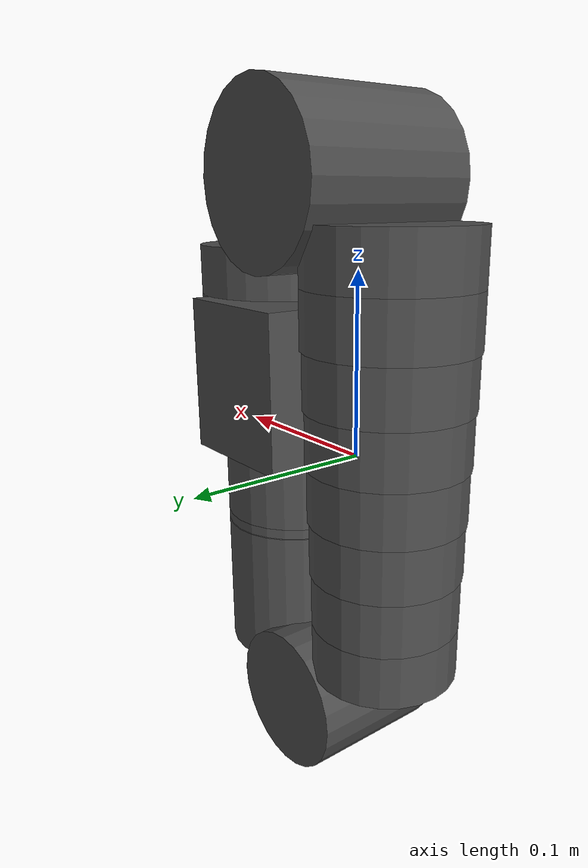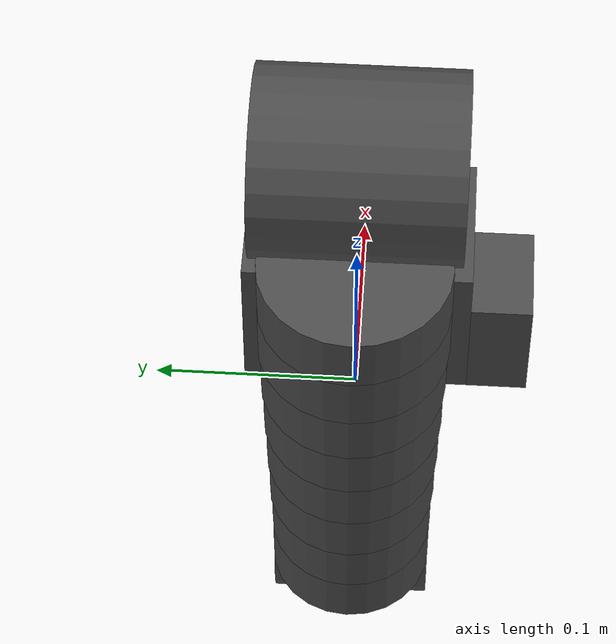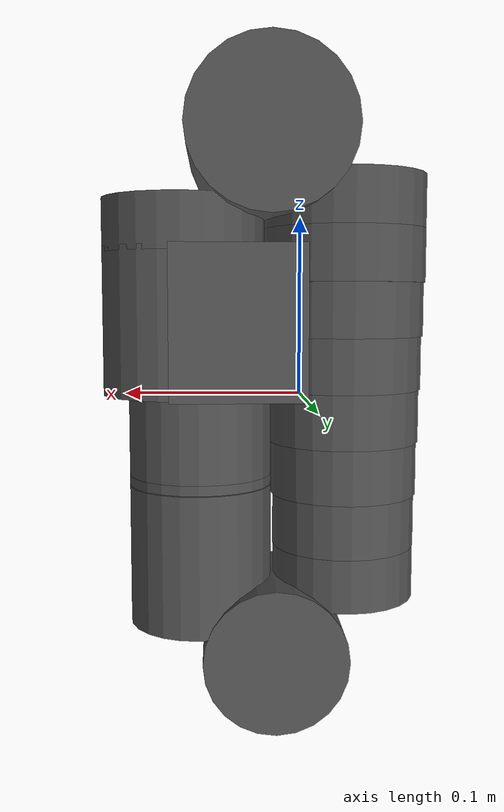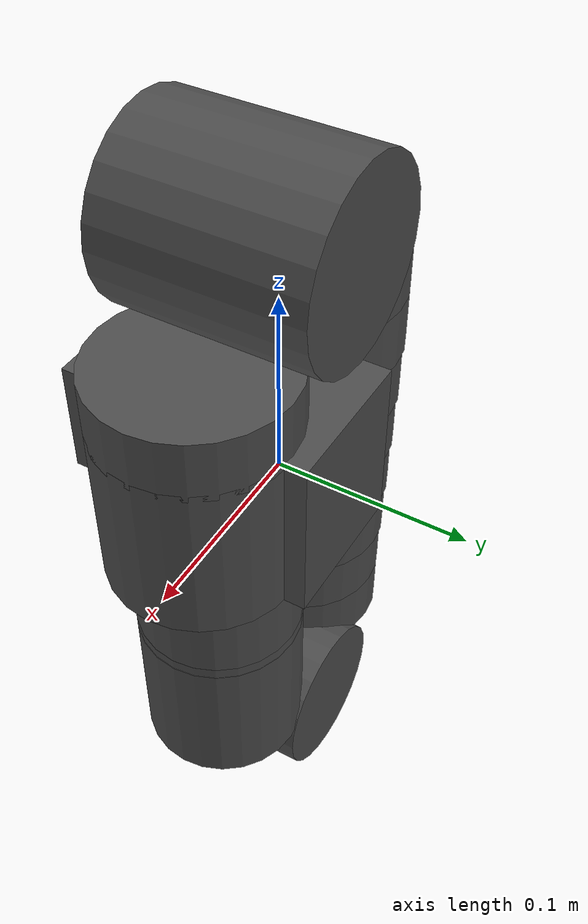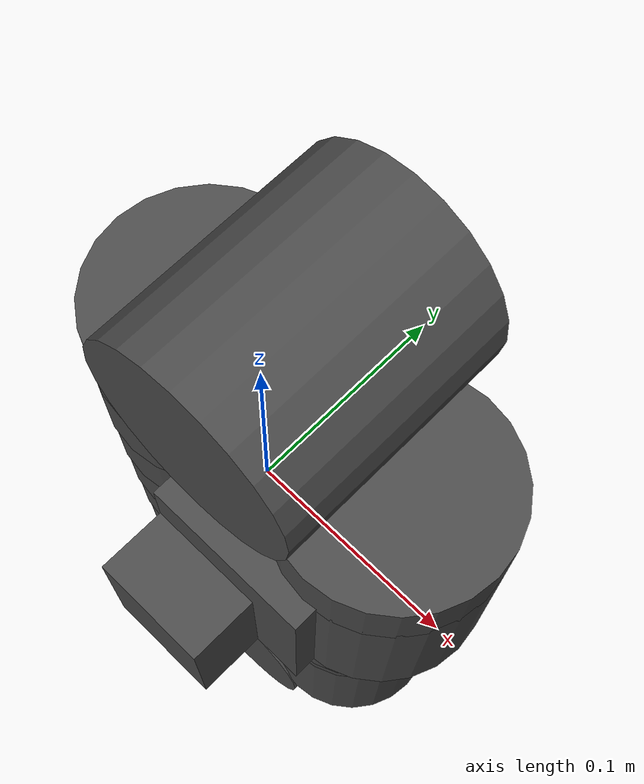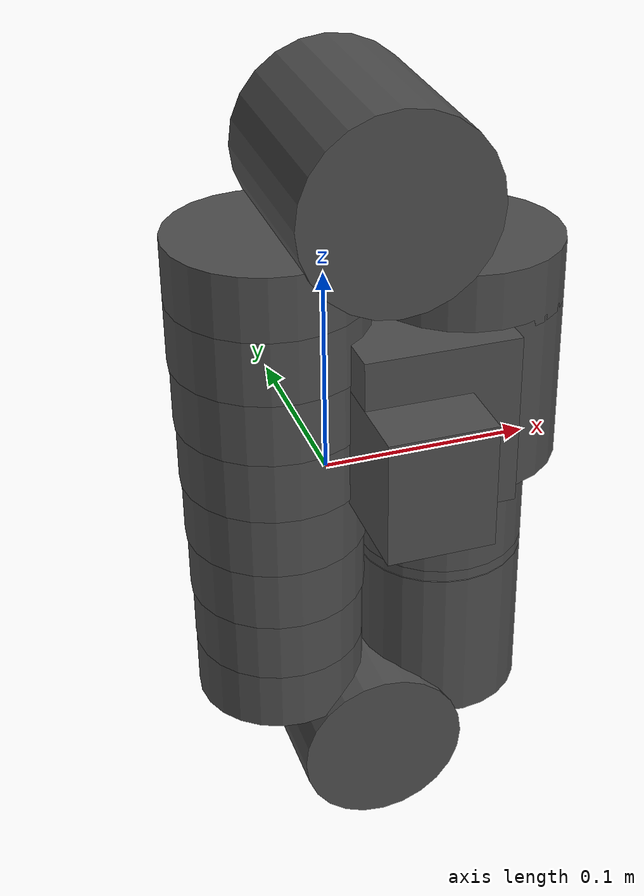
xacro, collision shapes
<?xml version="1.0" ?>
<robot name="tail_prototype_example" xmlns:xacro="http://ros.org/wiki/xacro">
  <xacro:include filename="$(find bpl_bravo_description)/urdf/tail_prototype.urdf.xacro"/>
    <link name="base_link"/>

    <xacro:tail parent="base_link" name="tail">
      <origin xyz="0 0 0" rpy="0 0 0"/>
    </xacro:tail>
</robot>

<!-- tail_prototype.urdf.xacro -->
<robot name="tail" xmlns:xacro="http://ros.org/wiki/xacro">

    <xacro:macro name="tail" params="parent *origin  name:=tail">
         <joint name="${name}_joint" type="fixed">
            <xacro:insert_block name="origin" />
            <parent link="${parent}"/>
            <child link="${name}_base_link" />
            <origin xyz="0 0 0" rpy="0 0 0"/>
        </joint>
        <material name="bravo_black">
            <color rgba="0.3 0.3 0.3 1"/>
        </material>
        <link name="${name}_base_link">
            <visual>
                <geometry>
                    <mesh filename="package://bpl_bravo_description/meshes/RS2-1019_base.stl"/>
                </geometry>
                <material name="bravo_black"/>
            </visual>
           <collision>
            <geometry>
                <box size="0.0725 0.1112 0.083"/>
            </geometry>
            <origin rpy="0 0 0" xyz="0.03625 00 0.0415"/>
        </collision>

        <collision>
            <geometry>
                <box size="0.050 0.080 0.060"/>
            </geometry>
            <origin rpy="0 0 0" xyz="0.025 -0.04556 0.03"/>
        </collision>

        <collision>
            <geometry>
                <cylinder radius="0.046" length="0.083"/>
            </geometry>
            <origin rpy="0 0 0" xyz="0.0665 0 0.0415"/>
        </collision>

        </link>

        <joint name="${name}_axis_1" type="revolute">
            <parent link="${name}_base_link"/>
            <origin xyz="0.0665 0 0.08" rpy="0 0 3.14159"/>
            <axis xyz="0 0 -1"/>
            <child link="${name}_1019_end_link"/>
            <limit effort="0" velocity="0" lower="0.0" upper="6.3" />
        </joint>

        <link name="${name}_1019_end_link">
            <visual>
                <geometry>
                    <mesh filename="package://bpl_bravo_description/meshes/RS2-1019_end.stl"/>
                </geometry>
                <material name="bravo_black"/>
            </visual>
        </link>

        <joint name="${name}_1_base_joint" type="fixed">
            <parent link="${name}_1019_end_link"/>
            <origin xyz="0 0 0" rpy="0 0 0"/>
            <child link="${name}_1013_base_link"/>
        </joint>

        <link name="${name}_1013_base_link">
            <visual>
                <geometry>
                    <mesh filename="package://bpl_bravo_description/meshes/RS2-1013_base.stl"/>
                </geometry>
                <material name="bravo_black"/>
            </visual>
            <collision>
                <geometry>
                    <cylinder radius="0.046" length="0.030"/>
                </geometry>
                <origin rpy="0 0 0" xyz="0.0 00 0.015"/>
            </collision>

            <collision>
                <geometry>
                    <cylinder radius="0.046" length="0.1"/>
                </geometry>
                <origin rpy="1.5707 0 0 " xyz="0.048 00 0.0642"/>
            </collision>
        </link>

        <joint name="${name}_axis_2" type="revolute">
            <parent link="${name}_1013_base_link"/>
            <origin xyz="0.046 0 0.0642" rpy="0 0 0"/>
            <axis xyz="0 -1 0"/>
            <child link="${name}_1013_joint_link"/>
            <limit effort="0" velocity="0" lower="0.0" upper="3.2" />
        </joint>

        <link name="${name}_1013_joint_link">
            <visual>
                <geometry>
                    <mesh filename="package://bpl_bravo_description/meshes/RS2-1013_end.stl"/>
                </geometry>
                <material name="bravo_black"/>
            </visual>

            <collision>

                <geometry>
                    <cylinder radius="0.046" length="0.03"/>
                </geometry>
                <origin rpy="0 0 0" xyz="0.046 0 -0.03555"/>
            </collision>
        </link>

        <joint name="${name}_1013_end_joint" type="fixed">
            <parent link="${name}_1013_joint_link"/>
            <origin xyz="0.046 0 -0.05055" rpy="3.14159 0 3.14159"/>
            <child link="${name}_1013_end_link"/>
        </joint>

        <link name="${name}_1013_end_link"/>

        <joint name="${name}_2_base_joint" type="fixed">
            <parent link="${name}_1013_end_link"/>
            <origin xyz="0 0 0.182" rpy="0 0 0"/>
            <child link="${name}_1023_0_base_link"/>
        </joint>

        <link name="${name}_1023_0_base_link">
            <visual>
                <geometry>
                    <mesh filename="package://bpl_bravo_description/meshes/RS2-1023_0_base.stl"/>
                </geometry>
                <material name="bravo_black"/>
            </visual>
            <collision>
                <geometry>
                    <cylinder radius="0.0408" length="0.03" />
                </geometry>
                <origin rpy="0 0 0" xyz="0 00 0.015"/>
            </collision>

            <collision>
                <geometry>
                    <cylinder radius="0.0408" length="0.0816" />
                </geometry>
                <origin rpy="1.5707 0 0" xyz="0.0408 00 0.0578"/>
            </collision>

        </link>

        <joint name="${name}_axis_3" type="revolute">
            <parent link="${name}_1023_0_base_link"/>
            <origin xyz="0.042 0 0.0578" rpy="0 0 0"/>
            <axis xyz="0 -1 0"/>
            <child link="${name}_1023_0_joint_link"/>
            <limit effort="0" velocity="0" lower="0.0" upper="3.2" />
        </joint>

        <link name="${name}_1023_0_joint_link">
            <visual>
                <geometry>
                    <mesh filename="package://bpl_bravo_description/meshes/RS2-1023_0_end.stl"/>
                </geometry>
                <material name="bravo_black"/>
            </visual>
            <collision>
                <geometry>
                    <cylinder radius="0.0408" length="0.080"/>
                </geometry>
                <origin rpy="0 0 0" xyz="0.0408 0 -0.05385"/>
            </collision>
        </link>

        <joint name="${name}_1023_0_end_joint" type="fixed">
            <parent link="${name}_1023_0_joint_link"/>
            <origin xyz="0.0408 0 -0.09385" rpy="3.14159 0 0"/>
            <child link="${name}_1023_0_end_link"/>
        </joint>

        <link name="${name}_1023_0_end_link"/>

        <joint name="${name}_3_base_joint" type="fixed">
            <parent link="${name}_1023_0_end_link"/>
            <origin xyz="0 0 0" rpy="0 0 0"/>
            <child link="${name}_1023_1_base_link"/>
        </joint>

        <link name="${name}_1023_1_base_link">
        </link>

        <joint name="${name}_axis_b" type="fixed">
            <parent link="${name}_1023_1_base_link"/>
            <origin xyz="0 0 0.0005" rpy="0 0 0"/>
            <axis xyz="0 0 -1"/>
            <child link="${name}_1023_1_joint_link"/>
        </joint>

        <link name="${name}_1023_1_joint_link">
            <visual>
                <geometry>
                    <mesh filename="package://bpl_bravo_description/meshes/RS2-1023_1_end.stl"/>
                </geometry>
                <material name="bravo_black"/>
            </visual>
            <collision>
                <geometry>
                    <cylinder radius="0.0408" length="0.0056"/>
                </geometry>
                <origin rpy="0 0 0" xyz="0 0 0.0028"/>
            </collision>
        </link>

        <joint name="${name}_1023_1_end_joint" type="fixed">
            <parent link="${name}_1023_1_joint_link"/>
            <origin xyz="0 0 0.0056" rpy="0 0 0"/>
            <child link="${name}_1023_1_end_link"/>
        </joint>

        <link name="${name}_1023_1_end_link"/>

        <joint name="${name}_4_base_joint" type="fixed">
            <parent link="${name}_1023_1_end_link"/>
            <origin xyz="0 0 0" rpy="0 0 0"/>
            <child link="${name}_1028_base_link"/>
        </joint>

        <link name="${name}_1028_base_link">
            <visual>
                <geometry>
                    <mesh filename="package://bpl_bravo_description/meshes/RS2-1028.stl"/>
                </geometry>
                <material name="bravo_black"/>
            </visual>
            <collision>
                <geometry>
                    <cylinder radius="0.0408" length="0.120"/>
                </geometry>
                <origin xyz="0 0 0.06" rpy="0 0 0"/>
            </collision>

        </link>

        <joint name="${name}_1028_end_joint" type="fixed">
            <parent link="${name}_1028_base_link"/>
            <origin xyz="0 0 0.120" rpy="-1.5707 -1.5707 0"/>
            <child link="${name}_1028_end_link"/>
        </joint>

        <link name="${name}_1028_end_link"/>

        <joint name="${name}_jaws_joint" type="fixed">
            <origin rpy="0 0 0" xyz=" 0 0 0.0"/>
            <parent link="${name}_1028_end_link"/>
            <child link="${name}_jaws_base_link"/>
        </joint>

        <link name="${name}_jaws_base_link">
        </link>
        <link name="${name}_push_rod"/>
        <joint name="${name}_axis_a" type="prismatic">
            <origin rpy="0 0 0" xyz="0 0 0.009"/>
            <parent link="${name}_jaws_base_link"/>
            <child link="${name}_push_rod"/>
            <axis xyz="0 0 1"/>
            <limit effort="10" lower="0" upper="0.035" velocity="10"/>
        </joint>

        <link name="${name}_1030_base_link">
            <visual>
                <geometry>
                    <mesh filename="package://bpl_bravo_description/meshes/RS2-1030.stl"/>
                </geometry>
                <material name="bravo_black"/>
            </visual>
            <collision>
                <geometry>
                    <cylinder radius="0.046" length="0.03033333"/>
                </geometry>
                <origin xyz="0 0 0.01516666" rpy="0 0 0"/>
            </collision>

            <collision>
                <geometry>
                    <cylinder radius="0.045" length="0.03033333"/>
                </geometry>
                <origin xyz="0 0 0.0455" rpy="0 0 0"/>
            </collision>

            <collision>
                <geometry>
                    <cylinder radius="0.044" length="0.03033333"/>
                </geometry>
                <origin xyz="0 0 0.075833333" rpy="0 0 0"/>
            </collision>

            <collision>
                <geometry>
                    <cylinder radius="0.043" length="0.03033333"/>
                </geometry>
                <origin xyz="0 0 0.1061666666" rpy="0 0 0"/>
            </collision>

            <collision>
                <geometry>
                    <cylinder radius="0.042" length="0.03033333"/>
                </geometry>
                <origin xyz="0 0 0.1365" rpy="0 0 0"/>
            </collision>
            <collision>
                <geometry>
                    <cylinder radius="0.041" length="0.03033333"/>
                </geometry>
                <origin xyz="0 0 0.1668333" rpy="0 0 0"/>
            </collision>
        </link>

        <joint name="${name}_1030_base_joint" type="fixed">
            <parent link="${name}_1013_end_link"/>
            <child link="${name}_1030_base_link"/>
            <origin xyz="0 0 0" rpy="0 0 0"/>
        </joint>

    </xacro:macro>
</robot>
